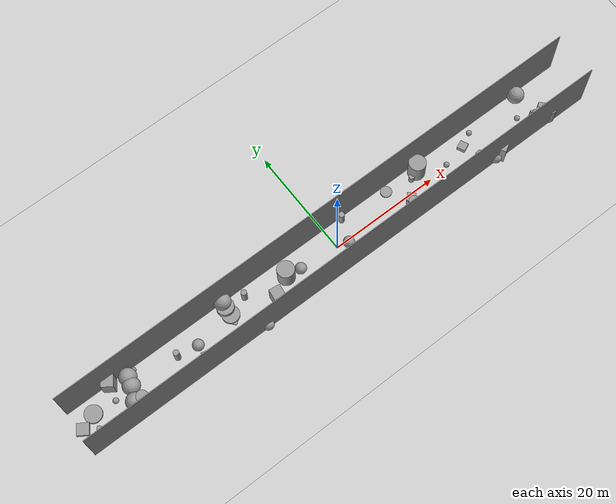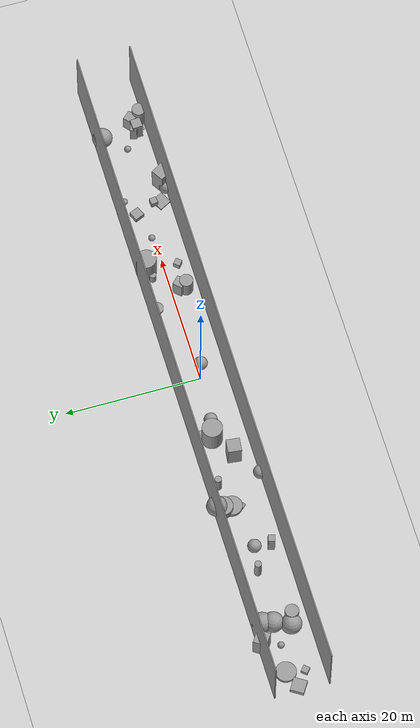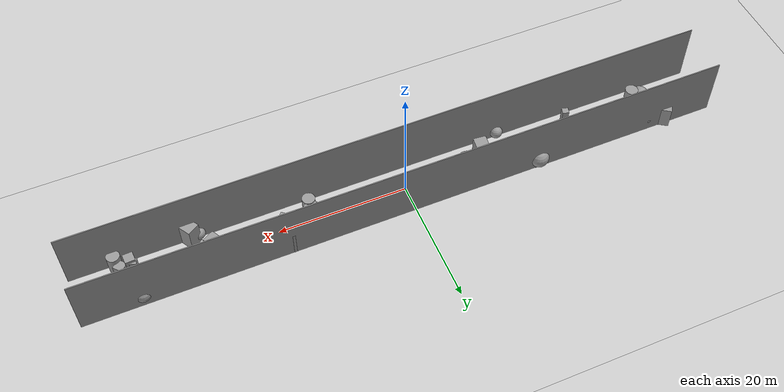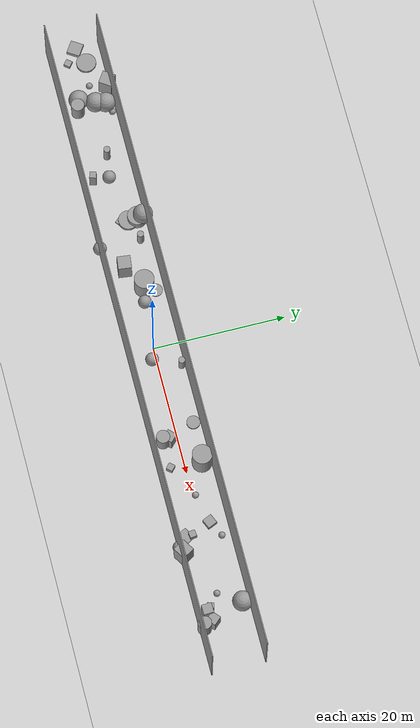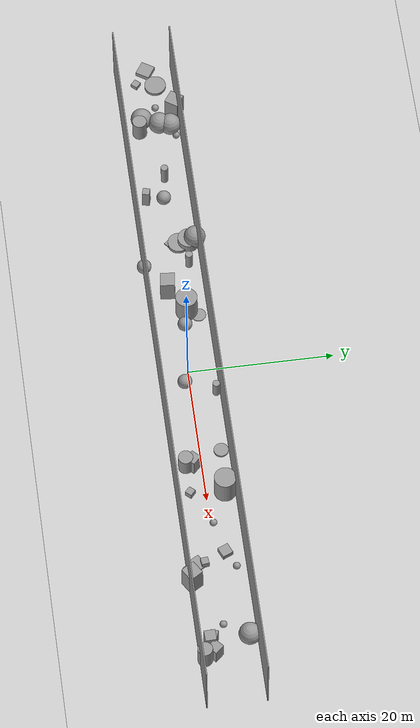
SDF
<sdf version="1.6">
 <world name="default">
  <model name="ground_plane">
   <static>1</static>
   <link name="link">
    <collision name="collision">
     <geometry><plane><normal>0 0 1</normal><size>100 100</size></plane></geometry>
     <surface>
      <contact><collide_bitmask>65535</collide_bitmask></contact>
      <friction><ode><mu>100</mu><mu2>50</mu2></ode></friction>
     </surface>
    </collision>
    <visual name="visual">
     <cast_shadows>0</cast_shadows>
     <geometry><plane><normal>0 0 1</normal><size>100 100</size></plane></geometry>
     <material>
      <script><uri>file://media/materials/scripts/gazebo.material</uri><name>Gazebo/Grey</name></script>
     </material>
    </visual>
   </link>
  </model>
  <light name="sun" type="directional">
   <pose>0 0 10 0 -0 0</pose>
   <diffuse>0.8 0.8 0.8 1</diffuse>
   <specular>0.2 0.2 0.2 1</specular>
   <attenuation>
    <range>1000</range>
    <constant>0.9</constant>
    <linear>0.01</linear>
    <quadratic>0.001</quadratic>
   </attenuation>
   <direction>-0.5 0.1 -0.9</direction>
  </light>
  <scene><shadows>0</shadows><ambient>0.4 0.4 0.4 1</ambient><background>0.7 0.7 0.7 1</background></scene>
  <plugin name="gazebo_octomap" filename="librotors_gazebo_octomap_plugin.so"/>
  <plugin name="ros_interface_plugin" filename="librotors_gazebo_ros_interface_plugin.so"/>
  <physics name="default_physics" default="0" type="ode">
   <max_step_size>0.005</max_step_size>
   <real_time_factor>1</real_time_factor>
   <real_time_update_rate>600</real_time_update_rate>
   <ode>
    <solver>
     <type>quick</type>
     <iters>1000</iters>
     <sor>1.3</sor>
     <use_dynamic_moi_rescaling>0</use_dynamic_moi_rescaling>
    </solver>
    <constraints>
     <cfm>0</cfm>
     <erp>0.2</erp>
     <contact_max_correcting_vel>100</contact_max_correcting_vel>
     <contact_surface_layer>0.001</contact_surface_layer>
    </constraints>
   </ode>
  </physics>
  <gravity>0 0 -9.8</gravity>
  <magnetic_field>6e-06 2.3e-05 -4.2e-05</magnetic_field>
  <atmosphere type="adiabatic"/>
  <audio><device>default</device></audio>
  <spherical_coordinates>
   <surface_model>EARTH_WGS84</surface_model>
   <latitude_deg>0</latitude_deg>
   <longitude_deg>0</longitude_deg>
   <elevation>0</elevation>
   <heading_deg>0</heading_deg>
  </spherical_coordinates>
  <model name="wall_100m">
   <link name="Wall_0">
    <pose>2e-06 0 0 0 -0 3.14159</pose>
    <inertial>
     <mass>1</mass>
     <inertia><ixx>1</ixx><ixy>0</ixy><ixz>0</ixz><iyy>1</iyy><iyz>0</iyz><izz>1</izz></inertia>
    </inertial>
    <visual name="Wall_0_Visual">
     <pose>0 0 1.25 0 -0 0</pose>
     <geometry><box><size>100.75 0.15 10</size></box></geometry>
     <material>
      <script><uri>file://media/materials/scripts/gazebo.material</uri><name>Gazebo/Grey</name></script>
      <ambient>1 1 1 1</ambient>
      <shader type="vertex"><normal_map>__default__</normal_map></shader>
      <diffuse>0.7 0.7 0.7 1</diffuse>
      <specular>0.01 0.01 0.01 1</specular>
      <emissive>0 0 0 1</emissive>
     </material>
     <meta><layer>0</layer></meta>
    </visual>
    <collision name="Wall_0_Collision">
     <pose>0 0 1.25 0 -0 0</pose>
     <geometry><box><size>100.75 0.15 10</size></box></geometry>
     <surface>
      <friction>
       <ode><mu>1</mu><mu2>1</mu2><fdir1>0 0 0</fdir1><slip1>0</slip1><slip2>0</slip2></ode>
       <torsional>
        <coefficient>1</coefficient>
        <patch_radius>0</patch_radius>
        <surface_radius>0</surface_radius>
        <use_patch_radius>1</use_patch_radius>
        <ode><slip>0</slip></ode>
       </torsional>
      </friction>
      <bounce><restitution_coefficient>0</restitution_coefficient><threshold>1e+06</threshold></bounce>
      <contact>
       <collide_without_contact>0</collide_without_contact>
       <collide_without_contact_bitmask>1</collide_without_contact_bitmask>
       <collide_bitmask>1</collide_bitmask>
       <ode>
        <soft_cfm>0</soft_cfm>
        <soft_erp>0.2</soft_erp>
        <kp>1e+13</kp>
        <kd>1</kd>
        <max_vel>0.01</max_vel>
        <min_depth>0</min_depth>
       </ode>
       <bullet>
        <split_impulse>1</split_impulse>
        <split_impulse_penetration_threshold>-0.01</split_impulse_penetration_threshold>
        <soft_cfm>0</soft_cfm>
        <soft_erp>0.2</soft_erp>
        <kp>1e+13</kp>
        <kd>1</kd>
       </bullet>
      </contact>
     </surface>
    </collision>
   </link>
   <static>1</static>
   <pose>-0.03768 -4 3.5 0 -0 0</pose>
  </model>
  <model name="wall_100m_clone">
   <link name="Wall_0">
    <pose>2e-06 0 0 0 -0 3.14159</pose>
    <inertial>
     <mass>1</mass>
     <inertia><ixx>1</ixx><ixy>0</ixy><ixz>0</ixz><iyy>1</iyy><iyz>0</iyz><izz>1</izz></inertia>
    </inertial>
    <visual name="Wall_0_Visual">
     <pose>0 0 1.25 0 -0 0</pose>
     <geometry><box><size>100.75 0.15 10</size></box></geometry>
     <material>
      <script><uri>file://media/materials/scripts/gazebo.material</uri><name>Gazebo/Grey</name></script>
      <ambient>1 1 1 1</ambient>
      <shader type="vertex"><normal_map>__default__</normal_map></shader>
      <diffuse>0.7 0.7 0.7 1</diffuse>
      <specular>0.01 0.01 0.01 1</specular>
      <emissive>0 0 0 1</emissive>
     </material>
     <meta><layer>0</layer></meta>
    </visual>
    <collision name="Wall_0_Collision">
     <pose>0 0 1.25 0 -0 0</pose>
     <geometry><box><size>100.75 0.15 10</size></box></geometry>
     <surface>
      <friction>
       <ode><mu>1</mu><mu2>1</mu2><fdir1>0 0 0</fdir1><slip1>0</slip1><slip2>0</slip2></ode>
       <torsional>
        <coefficient>1</coefficient>
        <patch_radius>0</patch_radius>
        <surface_radius>0</surface_radius>
        <use_patch_radius>1</use_patch_radius>
        <ode><slip>0</slip></ode>
       </torsional>
      </friction>
      <bounce><restitution_coefficient>0</restitution_coefficient><threshold>1e+06</threshold></bounce>
      <contact>
       <collide_without_contact>0</collide_without_contact>
       <collide_without_contact_bitmask>1</collide_without_contact_bitmask>
       <collide_bitmask>1</collide_bitmask>
       <ode>
        <soft_cfm>0</soft_cfm>
        <soft_erp>0.2</soft_erp>
        <kp>1e+13</kp>
        <kd>1</kd>
        <max_vel>0.01</max_vel>
        <min_depth>0</min_depth>
       </ode>
       <bullet>
        <split_impulse>1</split_impulse>
        <split_impulse_penetration_threshold>-0.01</split_impulse_penetration_threshold>
        <soft_cfm>0</soft_cfm>
        <soft_erp>0.2</soft_erp>
        <kp>1e+13</kp>
        <kd>1</kd>
       </bullet>
      </contact>
     </surface>
    </collision>
   </link>
   <static>1</static>
   <pose>-0.005816 4 3.5 0 -0 0</pose>
  </model>
  <model name="large_box_0">
   <static>1</static>
   <pose>32.17435597121026 -3.557737466605543 0 0 -0 3.691924820314133</pose>
   <link name="link">
    <inertial>
     <mass>1</mass>
     <inertia><ixx>0.1</ixx><ixy>0</ixy><ixz>0</ixz><iyy>0.1</iyy><iyz>0</iyz><izz>0.1</izz></inertia>
    </inertial>
    <collision name="collision"><geometry><box><size>2 2 7.593778229513632</size></box></geometry></collision>
    <visual name="visual">
     <geometry><box><size>2 2 7.593778229513632</size></box></geometry>
     <material>
      <script><name>Gazebo/Grey</name><uri>file://media/materials/scripts/gazebo.material</uri></script>
     </material>
    </visual>
   </link>
  </model>
  <model name="large_box_1">
   <static>1</static>
   <pose>-42.48912059427893 3.5659388070153737 0 0 -0 0.9737297801409254</pose>
   <link name="link">
    <inertial>
     <mass>1</mass>
     <inertia><ixx>0.1</ixx><ixy>0</ixy><ixz>0</ixz><iyy>0.1</iyy><iyz>0</iyz><izz>0.1</izz></inertia>
    </inertial>
    <collision name="collision"><geometry><box><size>2 2 6.71880683445423</size></box></geometry></collision>
    <visual name="visual">
     <geometry><box><size>2 2 6.71880683445423</size></box></geometry>
     <material>
      <script><name>Gazebo/Grey</name><uri>file://media/materials/scripts/gazebo.material</uri></script>
     </material>
    </visual>
   </link>
  </model>
  <model name="large_box_2">
   <static>1</static>
   <pose>-13.01944412521511 -1.110495902068842 0 0 -0 6.168273108836437</pose>
   <link name="link">
    <inertial>
     <mass>1</mass>
     <inertia><ixx>0.1</ixx><ixy>0</ixy><ixz>0</ixz><iyy>0.1</iyy><iyz>0</iyz><izz>0.1</izz></inertia>
    </inertial>
    <collision name="collision"><geometry><box><size>2 2 6.961490497161987</size></box></geometry></collision>
    <visual name="visual">
     <geometry><box><size>2 2 6.961490497161987</size></box></geometry>
     <material>
      <script><name>Gazebo/Grey</name><uri>file://media/materials/scripts/gazebo.material</uri></script>
     </material>
    </visual>
   </link>
  </model>
  <model name="large_box_3">
   <static>1</static>
   <pose>29.36420977655642 -2.666481407591867 0 0 -0 0.49820951172487093</pose>
   <link name="link">
    <inertial>
     <mass>1</mass>
     <inertia><ixx>0.1</ixx><ixy>0</ixy><ixz>0</ixz><iyy>0.1</iyy><iyz>0</iyz><izz>0.1</izz></inertia>
    </inertial>
    <collision name="collision"><geometry><box><size>2 2 0.21425760080132417</size></box></geometry></collision>
    <visual name="visual">
     <geometry><box><size>2 2 0.21425760080132417</size></box></geometry>
     <material>
      <script><name>Gazebo/Grey</name><uri>file://media/materials/scripts/gazebo.material</uri></script>
     </material>
    </visual>
   </link>
  </model>
  <model name="large_box_4">
   <static>1</static>
   <pose>-49.69364766389236 0.3254638092771778 0 0 -0 4.136685360800977</pose>
   <link name="link">
    <inertial>
     <mass>1</mass>
     <inertia><ixx>0.1</ixx><ixy>0</ixy><ixz>0</ixz><iyy>0.1</iyy><iyz>0</iyz><izz>0.1</izz></inertia>
    </inertial>
    <collision name="collision"><geometry><box><size>2 2 1.2311654168233854</size></box></geometry></collision>
    <visual name="visual">
     <geometry><box><size>2 2 1.2311654168233854</size></box></geometry>
     <material>
      <script><name>Gazebo/Grey</name><uri>file://media/materials/scripts/gazebo.material</uri></script>
     </material>
    </visual>
   </link>
  </model>
  <model name="medium_box_0">
   <static>1</static>
   <pose>-20.782703040551233 0.46170815098987017 0 0 -0 5.403689618186876</pose>
   <link name="link">
    <inertial>
     <mass>1</mass>
     <inertia><ixx>0.1</ixx><ixy>0</ixy><ixz>0</ixz><iyy>0.1</iyy><iyz>0</iyz><izz>0.1</izz></inertia>
    </inertial>
    <collision name="collision">
     <geometry><box><size>1.5 1.5 0.17924109490831874</size></box></geometry>
    </collision>
    <visual name="visual">
     <geometry><box><size>1.5 1.5 0.17924109490831874</size></box></geometry>
     <material>
      <script><name>Gazebo/Grey</name><uri>file://media/materials/scripts/gazebo.material</uri></script>
     </material>
    </visual>
   </link>
  </model>
  <model name="medium_box_1">
   <static>1</static>
   <pose>28.080300052431966 1.3872722775879343 0 0 -0 0.4098113003360216</pose>
   <link name="link">
    <inertial>
     <mass>1</mass>
     <inertia><ixx>0.1</ixx><ixy>0</ixy><ixz>0</ixz><iyy>0.1</iyy><iyz>0</iyz><izz>0.1</izz></inertia>
    </inertial>
    <collision name="collision"><geometry><box><size>1.5 1.5 1.376853672088389</size></box></geometry></collision>
    <visual name="visual">
     <geometry><box><size>1.5 1.5 1.376853672088389</size></box></geometry>
     <material>
      <script><name>Gazebo/Grey</name><uri>file://media/materials/scripts/gazebo.material</uri></script>
     </material>
    </visual>
   </link>
  </model>
  <model name="medium_box_2">
   <static>1</static>
   <pose>42.88502899970247 -1.87160714658049 0 0 -0 2.30592073728363</pose>
   <link name="link">
    <inertial>
     <mass>1</mass>
     <inertia><ixx>0.1</ixx><ixy>0</ixy><ixz>0</ixz><iyy>0.1</iyy><iyz>0</iyz><izz>0.1</izz></inertia>
    </inertial>
    <collision name="collision"><geometry><box><size>1.5 1.5 4.933737351890664</size></box></geometry></collision>
    <visual name="visual">
     <geometry><box><size>1.5 1.5 4.933737351890664</size></box></geometry>
     <material>
      <script><name>Gazebo/Grey</name><uri>file://media/materials/scripts/gazebo.material</uri></script>
     </material>
    </visual>
   </link>
  </model>
  <model name="medium_box_3">
   <static>1</static>
   <pose>41.40458145334715 -2.375825730253494 0 0 -0 3.1870616118674526</pose>
   <link name="link">
    <inertial>
     <mass>1</mass>
     <inertia><ixx>0.1</ixx><ixy>0</ixy><ixz>0</ixz><iyy>0.1</iyy><iyz>0</iyz><izz>0.1</izz></inertia>
    </inertial>
    <collision name="collision"><geometry><box><size>1.5 1.5 5.853620778848329</size></box></geometry></collision>
    <visual name="visual">
     <geometry><box><size>1.5 1.5 5.853620778848329</size></box></geometry>
     <material>
      <script><name>Gazebo/Grey</name><uri>file://media/materials/scripts/gazebo.material</uri></script>
     </material>
    </visual>
   </link>
  </model>
  <model name="medium_box_4">
   <static>1</static>
   <pose>14.62254249442799 -1.175886384074178 0 0 -0 0.793849142406307</pose>
   <link name="link">
    <inertial>
     <mass>1</mass>
     <inertia><ixx>0.1</ixx><ixy>0</ixy><ixz>0</ixz><iyy>0.1</iyy><iyz>0</iyz><izz>0.1</izz></inertia>
    </inertial>
    <collision name="collision"><geometry><box><size>1.5 1.5 5.173459468544656</size></box></geometry></collision>
    <visual name="visual">
     <geometry><box><size>1.5 1.5 5.173459468544656</size></box></geometry>
     <material>
      <script><name>Gazebo/Grey</name><uri>file://media/materials/scripts/gazebo.material</uri></script>
     </material>
    </visual>
   </link>
  </model>
  <model name="small_box_0">
   <static>1</static>
   <pose>41.00091690137886 -1.83543718980836 0 0 -0 1.2586247394415748</pose>
   <link name="link">
    <inertial>
     <mass>1</mass>
     <inertia><ixx>0.1</ixx><ixy>0</ixy><ixz>0</ixz><iyy>0.1</iyy><iyz>0</iyz><izz>0.1</izz></inertia>
    </inertial>
    <collision name="collision"><geometry><box><size>1 1 4.9899803500856015</size></box></geometry></collision>
    <visual name="visual">
     <geometry><box><size>1 1 4.9899803500856015</size></box></geometry>
     <material>
      <script><name>Gazebo/Grey</name><uri>file://media/materials/scripts/gazebo.material</uri></script>
     </material>
    </visual>
   </link>
  </model>
  <model name="small_box_1">
   <static>1</static>
   <pose>-47.60641342273361 -1.2774118509870966 0 0 -0 0.8633244958221935</pose>
   <link name="link">
    <inertial>
     <mass>1</mass>
     <inertia><ixx>0.1</ixx><ixy>0</ixy><ixz>0</ixz><iyy>0.1</iyy><iyz>0</iyz><izz>0.1</izz></inertia>
    </inertial>
    <collision name="collision"><geometry><box><size>1 1 1.0479185024592343</size></box></geometry></collision>
    <visual name="visual">
     <geometry><box><size>1 1 1.0479185024592343</size></box></geometry>
     <material>
      <script><name>Gazebo/Grey</name><uri>file://media/materials/scripts/gazebo.material</uri></script>
     </material>
    </visual>
   </link>
  </model>
  <model name="small_box_2">
   <static>1</static>
   <pose>18.68614555212298 -2.084281735511671 0 0 -0 5.553791266161545</pose>
   <link name="link">
    <inertial>
     <mass>1</mass>
     <inertia><ixx>0.1</ixx><ixy>0</ixy><ixz>0</ixz><iyy>0.1</iyy><iyz>0</iyz><izz>0.1</izz></inertia>
    </inertial>
    <collision name="collision"><geometry><box><size>1 1 1.6368336689678848</size></box></geometry></collision>
    <visual name="visual">
     <geometry><box><size>1 1 1.6368336689678848</size></box></geometry>
     <material>
      <script><name>Gazebo/Grey</name><uri>file://media/materials/scripts/gazebo.material</uri></script>
     </material>
    </visual>
   </link>
  </model>
  <model name="small_box_3">
   <static>1</static>
   <pose>29.372710968965734 -1.5240144831673952 0 0 -0 3.281459230555775</pose>
   <link name="link">
    <inertial>
     <mass>1</mass>
     <inertia><ixx>0.1</ixx><ixy>0</ixy><ixz>0</ixz><iyy>0.1</iyy><iyz>0</iyz><izz>0.1</izz></inertia>
    </inertial>
    <collision name="collision"><geometry><box><size>1 1 1.748782886718966</size></box></geometry></collision>
    <visual name="visual">
     <geometry><box><size>1 1 1.748782886718966</size></box></geometry>
     <material>
      <script><name>Gazebo/Grey</name><uri>file://media/materials/scripts/gazebo.material</uri></script>
     </material>
    </visual>
   </link>
  </model>
  <model name="small_box_4">
   <static>1</static>
   <pose>-28.03717044312959 -2.1980021272633747 0 0 -0 2.864820419884264</pose>
   <link name="link">
    <inertial>
     <mass>1</mass>
     <inertia><ixx>0.1</ixx><ixy>0</ixy><ixz>0</ixz><iyy>0.1</iyy><iyz>0</iyz><izz>0.1</izz></inertia>
    </inertial>
    <collision name="collision"><geometry><box><size>1 1 5.464525609698614</size></box></geometry></collision>
    <visual name="visual">
     <geometry><box><size>1 1 5.464525609698614</size></box></geometry>
     <material>
      <script><name>Gazebo/Grey</name><uri>file://media/materials/scripts/gazebo.material</uri></script>
     </material>
    </visual>
   </link>
  </model>
  <model name="large_sphere_0">
   <static>1</static>
   <pose>-20.60356003044901 3.6258969336021174 1.5 0 -0 4.300240458436616</pose>
   <link name="link">
    <inertial>
     <mass>1</mass>
     <inertia><ixx>0.1</ixx><ixy>0</ixy><ixz>0</ixz><iyy>0.1</iyy><iyz>0</iyz><izz>0.1</izz></inertia>
    </inertial>
    <collision name="collision"><geometry><sphere><radius>1.5</radius></sphere></geometry></collision>
    <visual name="visual">
     <geometry><sphere><radius>1.5</radius></sphere></geometry>
     <material>
      <script><name>Gazebo/Grey</name><uri>file://media/materials/scripts/gazebo.material</uri></script>
     </material>
    </visual>
   </link>
  </model>
  <model name="large_sphere_1">
   <static>1</static>
   <pose>41.132335340218546 2.9114039457469048 1.5 0 -0 2.213090437890468</pose>
   <link name="link">
    <inertial>
     <mass>1</mass>
     <inertia><ixx>0.1</ixx><ixy>0</ixy><ixz>0</ixz><iyy>0.1</iyy><iyz>0</iyz><izz>0.1</izz></inertia>
    </inertial>
    <collision name="collision"><geometry><sphere><radius>1.5</radius></sphere></geometry></collision>
    <visual name="visual">
     <geometry><sphere><radius>1.5</radius></sphere></geometry>
     <material>
      <script><name>Gazebo/Grey</name><uri>file://media/materials/scripts/gazebo.material</uri></script>
     </material>
    </visual>
   </link>
  </model>
  <model name="large_sphere_2">
   <static>1</static>
   <pose>-39.54238151366562 2.62250765762358 1.5 0 -0 2.5706933148830786</pose>
   <link name="link">
    <inertial>
     <mass>1</mass>
     <inertia><ixx>0.1</ixx><ixy>0</ixy><ixz>0</ixz><iyy>0.1</iyy><iyz>0</iyz><izz>0.1</izz></inertia>
    </inertial>
    <collision name="collision"><geometry><sphere><radius>1.5</radius></sphere></geometry></collision>
    <visual name="visual">
     <geometry><sphere><radius>1.5</radius></sphere></geometry>
     <material>
      <script><name>Gazebo/Grey</name><uri>file://media/materials/scripts/gazebo.material</uri></script>
     </material>
    </visual>
   </link>
  </model>
  <model name="large_sphere_3">
   <static>1</static>
   <pose>-40.8825620154594 -1.2773216883822034 1.5 0 -0 5.586844586171651</pose>
   <link name="link">
    <inertial>
     <mass>1</mass>
     <inertia><ixx>0.1</ixx><ixy>0</ixy><ixz>0</ixz><iyy>0.1</iyy><iyz>0</iyz><izz>0.1</izz></inertia>
    </inertial>
    <collision name="collision"><geometry><sphere><radius>1.5</radius></sphere></geometry></collision>
    <visual name="visual">
     <geometry><sphere><radius>1.5</radius></sphere></geometry>
     <material>
      <script><name>Gazebo/Grey</name><uri>file://media/materials/scripts/gazebo.material</uri></script>
     </material>
    </visual>
   </link>
  </model>
  <model name="large_sphere_4">
   <static>1</static>
   <pose>-39.913918695626705 1.1168912827791955 1.5 0 -0 2.8550895264514122</pose>
   <link name="link">
    <inertial>
     <mass>1</mass>
     <inertia><ixx>0.1</ixx><ixy>0</ixy><ixz>0</ixz><iyy>0.1</iyy><iyz>0</iyz><izz>0.1</izz></inertia>
    </inertial>
    <collision name="collision"><geometry><sphere><radius>1.5</radius></sphere></geometry></collision>
    <visual name="visual">
     <geometry><sphere><radius>1.5</radius></sphere></geometry>
     <material>
      <script><name>Gazebo/Grey</name><uri>file://media/materials/scripts/gazebo.material</uri></script>
     </material>
    </visual>
   </link>
  </model>
  <model name="medium_sphere_0">
   <static>1</static>
   <pose>1.9215005125114075 -0.6408985456512735 1 0 -0 5.378131564031651</pose>
   <link name="link">
    <inertial>
     <mass>1</mass>
     <inertia><ixx>0.1</ixx><ixy>0</ixy><ixz>0</ixz><iyy>0.1</iyy><iyz>0</iyz><izz>0.1</izz></inertia>
    </inertial>
    <collision name="collision"><geometry><sphere><radius>1</radius></sphere></geometry></collision>
    <visual name="visual">
     <geometry><sphere><radius>1</radius></sphere></geometry>
     <material>
      <script><name>Gazebo/Grey</name><uri>file://media/materials/scripts/gazebo.material</uri></script>
     </material>
    </visual>
   </link>
  </model>
  <model name="medium_sphere_1">
   <static>1</static>
   <pose>-16.952640259954578 -3.8722912600626476 1 0 -0 4.198937903769371</pose>
   <link name="link">
    <inertial>
     <mass>1</mass>
     <inertia><ixx>0.1</ixx><ixy>0</ixy><ixz>0</ixz><iyy>0.1</iyy><iyz>0</iyz><izz>0.1</izz></inertia>
    </inertial>
    <collision name="collision"><geometry><sphere><radius>1</radius></sphere></geometry></collision>
    <visual name="visual">
     <geometry><sphere><radius>1</radius></sphere></geometry>
     <material>
      <script><name>Gazebo/Grey</name><uri>file://media/materials/scripts/gazebo.material</uri></script>
     </material>
    </visual>
   </link>
  </model>
  <model name="medium_sphere_2">
   <static>1</static>
   <pose>-7.101246409723615 0.5359230483927169 1 0 -0 4.876857622198666</pose>
   <link name="link">
    <inertial>
     <mass>1</mass>
     <inertia><ixx>0.1</ixx><ixy>0</ixy><ixz>0</ixz><iyy>0.1</iyy><iyz>0</iyz><izz>0.1</izz></inertia>
    </inertial>
    <collision name="collision"><geometry><sphere><radius>1</radius></sphere></geometry></collision>
    <visual name="visual">
     <geometry><sphere><radius>1</radius></sphere></geometry>
     <material>
      <script><name>Gazebo/Grey</name><uri>file://media/materials/scripts/gazebo.material</uri></script>
     </material>
    </visual>
   </link>
  </model>
  <model name="medium_sphere_3">
   <static>1</static>
   <pose>-27.78917023100681 0.22156701731108264 1 0 -0 4.597829233989779</pose>
   <link name="link">
    <inertial>
     <mass>1</mass>
     <inertia><ixx>0.1</ixx><ixy>0</ixy><ixz>0</ixz><iyy>0.1</iyy><iyz>0</iyz><izz>0.1</izz></inertia>
    </inertial>
    <collision name="collision"><geometry><sphere><radius>1</radius></sphere></geometry></collision>
    <visual name="visual">
     <geometry><sphere><radius>1</radius></sphere></geometry>
     <material>
      <script><name>Gazebo/Grey</name><uri>file://media/materials/scripts/gazebo.material</uri></script>
     </material>
    </visual>
   </link>
  </model>
  <model name="medium_sphere_4">
   <static>1</static>
   <pose>30.959797839427992 -3.8492475128279535 1 0 -0 4.8792797200426685</pose>
   <link name="link">
    <inertial>
     <mass>1</mass>
     <inertia><ixx>0.1</ixx><ixy>0</ixy><ixz>0</ixz><iyy>0.1</iyy><iyz>0</iyz><izz>0.1</izz></inertia>
    </inertial>
    <collision name="collision"><geometry><sphere><radius>1</radius></sphere></geometry></collision>
    <visual name="visual">
     <geometry><sphere><radius>1</radius></sphere></geometry>
     <material>
      <script><name>Gazebo/Grey</name><uri>file://media/materials/scripts/gazebo.material</uri></script>
     </material>
    </visual>
   </link>
  </model>
  <model name="small_sphere_0">
   <static>1</static>
   <pose>30.507230505209264 2.595767401486051 0.5 0 -0 5.739761700194716</pose>
   <link name="link">
    <inertial>
     <mass>1</mass>
     <inertia><ixx>0.1</ixx><ixy>0</ixy><ixz>0</ixz><iyy>0.1</iyy><iyz>0</iyz><izz>0.1</izz></inertia>
    </inertial>
    <collision name="collision"><geometry><sphere><radius>0.5</radius></sphere></geometry></collision>
    <visual name="visual">
     <geometry><sphere><radius>0.5</radius></sphere></geometry>
     <material>
      <script><name>Gazebo/Grey</name><uri>file://media/materials/scripts/gazebo.material</uri></script>
     </material>
    </visual>
   </link>
  </model>
  <model name="small_sphere_1">
   <static>1</static>
   <pose>-43.14743979308612 0.9322106419569112 0.5 0 -0 2.331531266237528</pose>
   <link name="link">
    <inertial>
     <mass>1</mass>
     <inertia><ixx>0.1</ixx><ixy>0</ixy><ixz>0</ixz><iyy>0.1</iyy><iyz>0</iyz><izz>0.1</izz></inertia>
    </inertial>
    <collision name="collision"><geometry><sphere><radius>0.5</radius></sphere></geometry></collision>
    <visual name="visual">
     <geometry><sphere><radius>0.5</radius></sphere></geometry>
     <material>
      <script><name>Gazebo/Grey</name><uri>file://media/materials/scripts/gazebo.material</uri></script>
     </material>
    </visual>
   </link>
  </model>
  <model name="small_sphere_2">
   <static>1</static>
   <pose>38.843261815681416 -0.3080680191956384 0.5 0 -0 1.2383637950372461</pose>
   <link name="link">
    <inertial>
     <mass>1</mass>
     <inertia><ixx>0.1</ixx><ixy>0</ixy><ixz>0</ixz><iyy>0.1</iyy><iyz>0</iyz><izz>0.1</izz></inertia>
    </inertial>
    <collision name="collision"><geometry><sphere><radius>0.5</radius></sphere></geometry></collision>
    <visual name="visual">
     <geometry><sphere><radius>0.5</radius></sphere></geometry>
     <material>
      <script><name>Gazebo/Grey</name><uri>file://media/materials/scripts/gazebo.material</uri></script>
     </material>
    </visual>
   </link>
  </model>
  <model name="small_sphere_3">
   <static>1</static>
   <pose>23.66708825297843 0.38458802851914076 0.5 0 -0 1.1453287950494897</pose>
   <link name="link">
    <inertial>
     <mass>1</mass>
     <inertia><ixx>0.1</ixx><ixy>0</ixy><ixz>0</ixz><iyy>0.1</iyy><iyz>0</iyz><izz>0.1</izz></inertia>
    </inertial>
    <collision name="collision"><geometry><sphere><radius>0.5</radius></sphere></geometry></collision>
    <visual name="visual">
     <geometry><sphere><radius>0.5</radius></sphere></geometry>
     <material>
      <script><name>Gazebo/Grey</name><uri>file://media/materials/scripts/gazebo.material</uri></script>
     </material>
    </visual>
   </link>
  </model>
  <model name="small_sphere_4">
   <static>1</static>
   <pose>-38.231067817734186 3.3137634869859625 0.5 0 -0 4.159015239009353</pose>
   <link name="link">
    <inertial>
     <mass>1</mass>
     <inertia><ixx>0.1</ixx><ixy>0</ixy><ixz>0</ixz><iyy>0.1</iyy><iyz>0</iyz><izz>0.1</izz></inertia>
    </inertial>
    <collision name="collision"><geometry><sphere><radius>0.5</radius></sphere></geometry></collision>
    <visual name="visual">
     <geometry><sphere><radius>0.5</radius></sphere></geometry>
     <material>
      <script><name>Gazebo/Grey</name><uri>file://media/materials/scripts/gazebo.material</uri></script>
     </material>
    </visual>
   </link>
  </model>
  <model name="large_cylinder_0">
   <static>1</static>
   <pose>-20.656152977621524 2.774102725665392 0 0 -0 3.1664840842828017</pose>
   <link name="link">
    <inertial>
     <mass>1</mass>
     <inertia><ixx>0.1</ixx><ixy>0</ixy><ixz>0</ixz><iyy>0.1</iyy><iyz>0</iyz><izz>0.1</izz></inertia>
    </inertial>
    <collision name="collision">
     <geometry><cylinder><radius>1.5</radius><length>2.5667337177463843</length></cylinder></geometry>
    </collision>
    <visual name="visual">
     <geometry><cylinder><radius>1.5</radius><length>2.5667337177463843</length></cylinder></geometry>
     <material>
      <script><name>Gazebo/Grey</name><uri>file://media/materials/scripts/gazebo.material</uri></script>
     </material>
    </visual>
   </link>
  </model>
  <model name="large_cylinder_1">
   <static>1</static>
   <pose>-47.10496589852531 1.4099979213386442 0 0 -0 4.724671580062465</pose>
   <link name="link">
    <inertial>
     <mass>1</mass>
     <inertia><ixx>0.1</ixx><ixy>0</ixy><ixz>0</ixz><iyy>0.1</iyy><iyz>0</iyz><izz>0.1</izz></inertia>
    </inertial>
    <collision name="collision">
     <geometry><cylinder><radius>1.5</radius><length>0.7324768814299434</length></cylinder></geometry>
    </collision>
    <visual name="visual">
     <geometry><cylinder><radius>1.5</radius><length>0.7324768814299434</length></cylinder></geometry>
     <material>
      <script><name>Gazebo/Grey</name><uri>file://media/materials/scripts/gazebo.material</uri></script>
     </material>
    </visual>
   </link>
  </model>
  <model name="large_cylinder_2">
   <static>1</static>
   <pose>18.908721679098917 2.602833175931818 0 0 -0 2.3771669514250204</pose>
   <link name="link">
    <inertial>
     <mass>1</mass>
     <inertia><ixx>0.1</ixx><ixy>0</ixy><ixz>0</ixz><iyy>0.1</iyy><iyz>0</iyz><izz>0.1</izz></inertia>
    </inertial>
    <collision name="collision">
     <geometry><cylinder><radius>1.5</radius><length>7.744484665439633</length></cylinder></geometry>
    </collision>
    <visual name="visual">
     <geometry><cylinder><radius>1.5</radius><length>7.744484665439633</length></cylinder></geometry>
     <material>
      <script><name>Gazebo/Grey</name><uri>file://media/materials/scripts/gazebo.material</uri></script>
     </material>
    </visual>
   </link>
  </model>
  <model name="large_cylinder_3">
   <static>1</static>
   <pose>-9.65226410505651 1.0784628421009268 0 0 -0 0.9756973980914934</pose>
   <link name="link">
    <inertial>
     <mass>1</mass>
     <inertia><ixx>0.1</ixx><ixy>0</ixy><ixz>0</ixz><iyy>0.1</iyy><iyz>0</iyz><izz>0.1</izz></inertia>
    </inertial>
    <collision name="collision">
     <geometry><cylinder><radius>1.5</radius><length>7.4644149720695445</length></cylinder></geometry>
    </collision>
    <visual name="visual">
     <geometry><cylinder><radius>1.5</radius><length>7.4644149720695445</length></cylinder></geometry>
     <material>
      <script><name>Gazebo/Grey</name><uri>file://media/materials/scripts/gazebo.material</uri></script>
     </material>
    </visual>
   </link>
  </model>
  <model name="large_cylinder_4">
   <static>1</static>
   <pose>-20.62494740440126 1.3802263095048897 0 0 -0 0.8684176690441536</pose>
   <link name="link">
    <inertial>
     <mass>1</mass>
     <inertia><ixx>0.1</ixx><ixy>0</ixy><ixz>0</ixz><iyy>0.1</iyy><iyz>0</iyz><izz>0.1</izz></inertia>
    </inertial>
    <collision name="collision">
     <geometry><cylinder><radius>1.5</radius><length>0.8819466137154821</length></cylinder></geometry>
    </collision>
    <visual name="visual">
     <geometry><cylinder><radius>1.5</radius><length>0.8819466137154821</length></cylinder></geometry>
     <material>
      <script><name>Gazebo/Grey</name><uri>file://media/materials/scripts/gazebo.material</uri></script>
     </material>
    </visual>
   </link>
  </model>
  <model name="medium_cylinder_0">
   <static>1</static>
   <pose>12.614976544356239 2.885271286774624 0 0 -0 5.071527770535708</pose>
   <link name="link">
    <inertial>
     <mass>1</mass>
     <inertia><ixx>0.1</ixx><ixy>0</ixy><ixz>0</ixz><iyy>0.1</iyy><iyz>0</iyz><izz>0.1</izz></inertia>
    </inertial>
    <collision name="collision">
     <geometry><cylinder><radius>1</radius><length>0.3900400415901428</length></cylinder></geometry>
    </collision>
    <visual name="visual">
     <geometry><cylinder><radius>1</radius><length>0.3900400415901428</length></cylinder></geometry>
     <material>
      <script><name>Gazebo/Grey</name><uri>file://media/materials/scripts/gazebo.material</uri></script>
     </material>
    </visual>
   </link>
  </model>
  <model name="medium_cylinder_1">
   <static>1</static>
   <pose>43.417921601241346 -3.2957181855426656 0 0 -0 0.7078269547746949</pose>
   <link name="link">
    <inertial>
     <mass>1</mass>
     <inertia><ixx>0.1</ixx><ixy>0</ixy><ixz>0</ixz><iyy>0.1</iyy><iyz>0</iyz><izz>0.1</izz></inertia>
    </inertial>
    <collision name="collision">
     <geometry><cylinder><radius>1</radius><length>6.383134864952567</length></cylinder></geometry>
    </collision>
    <visual name="visual">
     <geometry><cylinder><radius>1</radius><length>6.383134864952567</length></cylinder></geometry>
     <material>
      <script><name>Gazebo/Grey</name><uri>file://media/materials/scripts/gazebo.material</uri></script>
     </material>
    </visual>
   </link>
  </model>
  <model name="medium_cylinder_2">
   <static>1</static>
   <pose>-39.55685212911207 -1.6933703769870307 0 0 -0 4.664653297675275</pose>
   <link name="link">
    <inertial>
     <mass>1</mass>
     <inertia><ixx>0.1</ixx><ixy>0</ixy><ixz>0</ixz><iyy>0.1</iyy><iyz>0</iyz><izz>0.1</izz></inertia>
    </inertial>
    <collision name="collision">
     <geometry><cylinder><radius>1</radius><length>5.939683810144603</length></cylinder></geometry>
    </collision>
    <visual name="visual">
     <geometry><cylinder><radius>1</radius><length>5.939683810144603</length></cylinder></geometry>
     <material>
      <script><name>Gazebo/Grey</name><uri>file://media/materials/scripts/gazebo.material</uri></script>
     </material>
    </visual>
   </link>
  </model>
  <model name="medium_cylinder_3">
   <static>1</static>
   <pose>14.525928599638902 -2.1513184483549948 0 0 -0 5.846039115382745</pose>
   <link name="link">
    <inertial>
     <mass>1</mass>
     <inertia><ixx>0.1</ixx><ixy>0</ixy><ixz>0</ixz><iyy>0.1</iyy><iyz>0</iyz><izz>0.1</izz></inertia>
    </inertial>
    <collision name="collision">
     <geometry><cylinder><radius>1</radius><length>5.467273300850196</length></cylinder></geometry>
    </collision>
    <visual name="visual">
     <geometry><cylinder><radius>1</radius><length>5.467273300850196</length></cylinder></geometry>
     <material>
      <script><name>Gazebo/Grey</name><uri>file://media/materials/scripts/gazebo.material</uri></script>
     </material>
    </visual>
   </link>
  </model>
  <model name="medium_cylinder_4">
   <static>1</static>
   <pose>-8.867006290253187 2.645172919253315 0 0 -0 6.080032938340819</pose>
   <link name="link">
    <inertial>
     <mass>1</mass>
     <inertia><ixx>0.1</ixx><ixy>0</ixy><ixz>0</ixz><iyy>0.1</iyy><iyz>0</iyz><izz>0.1</izz></inertia>
    </inertial>
    <collision name="collision">
     <geometry><cylinder><radius>1</radius><length>0.12730315414528715</length></cylinder></geometry>
    </collision>
    <visual name="visual">
     <geometry><cylinder><radius>1</radius><length>0.12730315414528715</length></cylinder></geometry>
     <material>
      <script><name>Gazebo/Grey</name><uri>file://media/materials/scripts/gazebo.material</uri></script>
     </material>
    </visual>
   </link>
  </model>
  <model name="small_cylinder_0">
   <static>1</static>
   <pose>42.12542435206635 -3.5524447392492204 0 0 -0 0.418007097705363</pose>
   <link name="link">
    <inertial>
     <mass>1</mass>
     <inertia><ixx>0.1</ixx><ixy>0</ixy><ixz>0</ixz><iyy>0.1</iyy><iyz>0</iyz><izz>0.1</izz></inertia>
    </inertial>
    <collision name="collision">
     <geometry><cylinder><radius>0.5</radius><length>0.06134163242250246</length></cylinder></geometry>
    </collision>
    <visual name="visual">
     <geometry><cylinder><radius>0.5</radius><length>0.06134163242250246</length></cylinder></geometry>
     <material>
      <script><name>Gazebo/Grey</name><uri>file://media/materials/scripts/gazebo.material</uri></script>
     </material>
    </visual>
   </link>
  </model>
  <model name="small_cylinder_1">
   <static>1</static>
   <pose>-17.130954045247414 2.3948757427990106 0 0 -0 3.5474650939466414</pose>
   <link name="link">
    <inertial>
     <mass>1</mass>
     <inertia><ixx>0.1</ixx><ixy>0</ixy><ixz>0</ixz><iyy>0.1</iyy><iyz>0</iyz><izz>0.1</izz></inertia>
    </inertial>
    <collision name="collision">
     <geometry><cylinder><radius>0.5</radius><length>5.298357455307256</length></cylinder></geometry>
    </collision>
    <visual name="visual">
     <geometry><cylinder><radius>0.5</radius><length>5.298357455307256</length></cylinder></geometry>
     <material>
      <script><name>Gazebo/Grey</name><uri>file://media/materials/scripts/gazebo.material</uri></script>
     </material>
    </visual>
   </link>
  </model>
  <model name="small_cylinder_2">
   <static>1</static>
   <pose>17.412315194900202 2.0551649622318013 0 0 -0 1.9177750618594271</pose>
   <link name="link">
    <inertial>
     <mass>1</mass>
     <inertia><ixx>0.1</ixx><ixy>0</ixy><ixz>0</ixz><iyy>0.1</iyy><iyz>0</iyz><izz>0.1</izz></inertia>
    </inertial>
    <collision name="collision">
     <geometry><cylinder><radius>0.5</radius><length>2.6711459200370964</length></cylinder></geometry>
    </collision>
    <visual name="visual">
     <geometry><cylinder><radius>0.5</radius><length>2.6711459200370964</length></cylinder></geometry>
     <material>
      <script><name>Gazebo/Grey</name><uri>file://media/materials/scripts/gazebo.material</uri></script>
     </material>
    </visual>
   </link>
  </model>
  <model name="small_cylinder_3">
   <static>1</static>
   <pose>-31.430949822197384 0.7939496488238316 0 0 -0 5.462889182887538</pose>
   <link name="link">
    <inertial>
     <mass>1</mass>
     <inertia><ixx>0.1</ixx><ixy>0</ixy><ixz>0</ixz><iyy>0.1</iyy><iyz>0</iyz><izz>0.1</izz></inertia>
    </inertial>
    <collision name="collision">
     <geometry><cylinder><radius>0.5</radius><length>5.954245485369993</length></cylinder></geometry>
    </collision>
    <visual name="visual">
     <geometry><cylinder><radius>0.5</radius><length>5.954245485369993</length></cylinder></geometry>
     <material>
      <script><name>Gazebo/Grey</name><uri>file://media/materials/scripts/gazebo.material</uri></script>
     </material>
    </visual>
   </link>
  </model>
  <model name="small_cylinder_4">
   <static>1</static>
   <pose>3.5799427174462934 3.447959396217418 0 0 -0 1.8035675280834669</pose>
   <link name="link">
    <inertial>
     <mass>1</mass>
     <inertia><ixx>0.1</ixx><ixy>0</ixy><ixz>0</ixz><iyy>0.1</iyy><iyz>0</iyz><izz>0.1</izz></inertia>
    </inertial>
    <collision name="collision">
     <geometry><cylinder><radius>0.5</radius><length>4.885724227384313</length></cylinder></geometry>
    </collision>
    <visual name="visual">
     <geometry><cylinder><radius>0.5</radius><length>4.885724227384313</length></cylinder></geometry>
     <material>
      <script><name>Gazebo/Grey</name><uri>file://media/materials/scripts/gazebo.material</uri></script>
     </material>
    </visual>
   </link>
  </model>
 </world>
</sdf>
